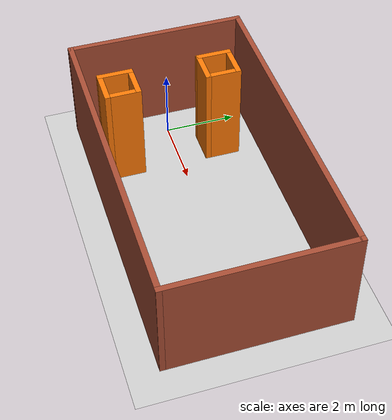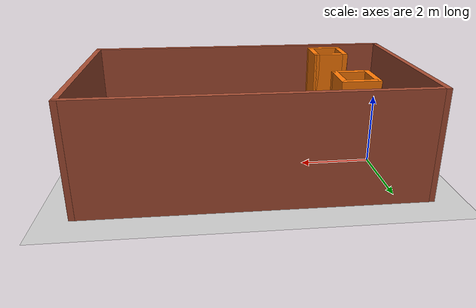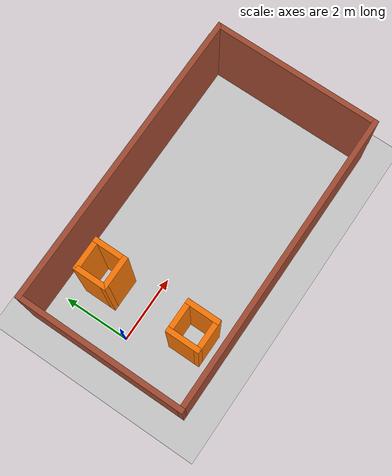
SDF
<sdf version="1.6">
 <world name="default">
  <model name="ground_plane">
   <static>1</static>
   <link name="link">
    <collision name="collision">
     <geometry><plane><normal>0 0 1</normal><size>100 100</size></plane></geometry>
     <surface><friction><ode><mu>100</mu><mu2>50</mu2></ode></friction></surface>
    </collision>
    <visual name="visual">
     <cast_shadows>0</cast_shadows>
     <geometry><plane><normal>0 0 1</normal><size>100 100</size></plane></geometry>
     <material>
      <script><uri>file://media/materials/scripts/gazebo.material</uri><name>Gazebo/Grey</name></script>
     </material>
    </visual>
   </link>
  </model>
  <model name="fangjian">
   <pose>3.59658 -0.047022 0 0 -0 0</pose>
   <link name="Wall_11">
    <collision name="Wall_11_Collision">
     <geometry><box><size>9 0.15 3</size></box></geometry>
     <pose>0 0 1.5 0 -0 0</pose>
    </collision>
    <visual name="Wall_11_Visual">
     <pose>0 0 1.5 0 -0 0</pose>
     <geometry><box><size>9 0.15 3</size></box></geometry>
     <material>
      <script><uri>file://media/materials/scripts/gazebo.material</uri><name>Gazebo/Bricks</name></script>
      <ambient>1 1 1 1</ambient>
     </material>
     <meta><layer>0</layer></meta>
    </visual>
    <pose>-0 2.434 0 0 -0 0</pose>
   </link>
   <link name="Wall_12">
    <collision name="Wall_12_Collision">
     <geometry><box><size>5.017 0.15 3</size></box></geometry>
     <pose>0 0 1.5 0 -0 0</pose>
    </collision>
    <visual name="Wall_12_Visual">
     <pose>0 0 1.5 0 -0 0</pose>
     <geometry><box><size>5.017 0.15 3</size></box></geometry>
     <material>
      <script><uri>file://media/materials/scripts/gazebo.material</uri><name>Gazebo/Bricks</name></script>
      <ambient>1 1 1 1</ambient>
     </material>
     <meta><layer>0</layer></meta>
    </visual>
    <pose>4.425 0.000504 0 0 -0 -1.5708</pose>
   </link>
   <link name="Wall_13">
    <collision name="Wall_13_Collision">
     <geometry><box><size>9 0.15 3</size></box></geometry>
     <pose>0 0 1.5 0 -0 0</pose>
    </collision>
    <visual name="Wall_13_Visual">
     <pose>0 0 1.5 0 -0 0</pose>
     <geometry><box><size>9 0.15 3</size></box></geometry>
     <material>
      <script><uri>file://media/materials/scripts/gazebo.material</uri><name>Gazebo/Bricks</name></script>
      <ambient>1 1 1 1</ambient>
     </material>
     <meta><layer>0</layer></meta>
    </visual>
    <pose>-0 -2.4335 0 0 -0 -3.14148</pose>
   </link>
   <link name="Wall_14">
    <collision name="Wall_14_Collision">
     <geometry><box><size>5.018 0.15 3</size></box></geometry>
     <pose>0 0 1.5 0 -0 0</pose>
    </collision>
    <visual name="Wall_14_Visual">
     <pose>0 0 1.5 0 -0 0</pose>
     <geometry><box><size>5.018 0.15 3</size></box></geometry>
     <material>
      <script><uri>file://media/materials/scripts/gazebo.material</uri><name>Gazebo/Bricks</name></script>
      <ambient>1 1 1 1</ambient>
     </material>
     <meta><layer>0</layer></meta>
    </visual>
    <pose>-4.425 4e-06 0 0 -0 1.5708</pose>
   </link>
   <static>1</static>
  </model>
  <model name="zhuzi">
   <pose>1.00373 -1.58252 0 0 -0 0</pose>
   <link name="Wall_0">
    <collision name="Wall_0_Collision">
     <geometry><box><size>1 0.15 3</size></box></geometry>
     <pose>0 0 1.5 0 -0 0</pose>
    </collision>
    <visual name="Wall_0_Visual">
     <pose>0 0 1.5 0 -0 0</pose>
     <geometry><box><size>1 0.15 3</size></box></geometry>
     <material>
      <script><uri>file://media/materials/scripts/gazebo.material</uri><name>Gazebo/Grey</name></script>
      <ambient>0.996078 0.47451 0.0196078 1</ambient>
     </material>
     <meta><layer>0</layer></meta>
    </visual>
    <pose>0 0.425 0 0 -0 0</pose>
   </link>
   <link name="Wall_1">
    <collision name="Wall_1_Collision">
     <geometry><box><size>1 0.15 3</size></box></geometry>
     <pose>0 0 1.5 0 -0 0</pose>
    </collision>
    <visual name="Wall_1_Visual">
     <pose>0 0 1.5 0 -0 0</pose>
     <geometry><box><size>1 0.15 3</size></box></geometry>
     <material>
      <script><uri>file://media/materials/scripts/gazebo.material</uri><name>Gazebo/Grey</name></script>
      <ambient>0.996078 0.47451 0.0196078 1</ambient>
     </material>
     <meta><layer>0</layer></meta>
    </visual>
    <pose>0.425 -0 0 0 -0 -1.5708</pose>
   </link>
   <link name="Wall_2">
    <collision name="Wall_2_Collision">
     <geometry><box><size>1 0.15 3</size></box></geometry>
     <pose>0 0 1.5 0 -0 0</pose>
    </collision>
    <visual name="Wall_2_Visual">
     <pose>0 0 1.5 0 -0 0</pose>
     <geometry><box><size>1 0.15 3</size></box></geometry>
     <material>
      <script><uri>file://media/materials/scripts/gazebo.material</uri><name>Gazebo/Grey</name></script>
      <ambient>0.996078 0.47451 0.0196078 1</ambient>
     </material>
     <meta><layer>0</layer></meta>
    </visual>
    <pose>0 -0.425 0 0 -0 3.14159</pose>
   </link>
   <link name="Wall_3">
    <collision name="Wall_3_Collision">
     <geometry><box><size>1 0.15 3</size></box></geometry>
     <pose>0 0 1.5 0 -0 0</pose>
    </collision>
    <visual name="Wall_3_Visual">
     <pose>0 0 1.5 0 -0 0</pose>
     <geometry><box><size>1 0.15 3</size></box></geometry>
     <material>
      <script><uri>file://media/materials/scripts/gazebo.material</uri><name>Gazebo/Grey</name></script>
      <ambient>0.996078 0.47451 0.0196078 1</ambient>
     </material>
     <meta><layer>0</layer></meta>
    </visual>
    <pose>-0.425 -0 0 0 -0 1.5708</pose>
   </link>
   <link name="Wall_4">
    <collision name="Wall_4_Collision">
     <geometry><box><size>0.15 0.15 2.5</size></box></geometry>
     <pose>0 0 1.25 0 -0 0</pose>
    </collision>
    <visual name="Wall_4_Visual">
     <pose>0 0 1.25 0 -0 0</pose>
     <geometry><box><size>0.15 0.15 2.5</size></box></geometry>
     <material>
      <script><uri>file://media/materials/scripts/gazebo.material</uri><name>Gazebo/Grey</name></script>
      <ambient>1 1 1 1</ambient>
     </material>
     <meta><layer>0</layer></meta>
    </visual>
    <pose>-0.425 0.425 0 0 -0 0</pose>
   </link>
   <static>1</static>
  </model>
  <model name="zhuzi_0">
   <pose>0.986806 1.21192 0 0 -0 0</pose>
   <link name="Wall_0">
    <collision name="Wall_0_Collision">
     <geometry><box><size>1 0.15 3</size></box></geometry>
     <pose>0 0 1.5 0 -0 0</pose>
    </collision>
    <visual name="Wall_0_Visual">
     <pose>0 0 1.5 0 -0 0</pose>
     <geometry><box><size>1 0.15 3</size></box></geometry>
     <material>
      <script><uri>file://media/materials/scripts/gazebo.material</uri><name>Gazebo/Grey</name></script>
      <ambient>0.996078 0.47451 0.0196078 1</ambient>
     </material>
     <meta><layer>0</layer></meta>
    </visual>
    <pose>0 0.425 0 0 -0 0</pose>
   </link>
   <link name="Wall_1">
    <collision name="Wall_1_Collision">
     <geometry><box><size>1 0.15 3</size></box></geometry>
     <pose>0 0 1.5 0 -0 0</pose>
    </collision>
    <visual name="Wall_1_Visual">
     <pose>0 0 1.5 0 -0 0</pose>
     <geometry><box><size>1 0.15 3</size></box></geometry>
     <material>
      <script><uri>file://media/materials/scripts/gazebo.material</uri><name>Gazebo/Grey</name></script>
      <ambient>0.996078 0.47451 0.0196078 1</ambient>
     </material>
     <meta><layer>0</layer></meta>
    </visual>
    <pose>0.425 -0 0 0 -0 -1.5708</pose>
   </link>
   <link name="Wall_2">
    <collision name="Wall_2_Collision">
     <geometry><box><size>1 0.15 3</size></box></geometry>
     <pose>0 0 1.5 0 -0 0</pose>
    </collision>
    <visual name="Wall_2_Visual">
     <pose>0 0 1.5 0 -0 0</pose>
     <geometry><box><size>1 0.15 3</size></box></geometry>
     <material>
      <script><uri>file://media/materials/scripts/gazebo.material</uri><name>Gazebo/Grey</name></script>
      <ambient>0.996078 0.47451 0.0196078 1</ambient>
     </material>
     <meta><layer>0</layer></meta>
    </visual>
    <pose>0 -0.425 0 0 -0 3.14159</pose>
   </link>
   <link name="Wall_3">
    <collision name="Wall_3_Collision">
     <geometry><box><size>1 0.15 3</size></box></geometry>
     <pose>0 0 1.5 0 -0 0</pose>
    </collision>
    <visual name="Wall_3_Visual">
     <pose>0 0 1.5 0 -0 0</pose>
     <geometry><box><size>1 0.15 3</size></box></geometry>
     <material>
      <script><uri>file://media/materials/scripts/gazebo.material</uri><name>Gazebo/Grey</name></script>
      <ambient>0.996078 0.47451 0.0196078 1</ambient>
     </material>
     <meta><layer>0</layer></meta>
    </visual>
    <pose>-0.425 -0 0 0 -0 1.5708</pose>
   </link>
   <link name="Wall_4">
    <collision name="Wall_4_Collision">
     <geometry><box><size>0.15 0.15 2.5</size></box></geometry>
     <pose>0 0 1.25 0 -0 0</pose>
    </collision>
    <visual name="Wall_4_Visual">
     <pose>0 0 1.25 0 -0 0</pose>
     <geometry><box><size>0.15 0.15 2.5</size></box></geometry>
     <material>
      <script><uri>file://media/materials/scripts/gazebo.material</uri><name>Gazebo/Grey</name></script>
      <ambient>1 1 1 1</ambient>
     </material>
     <meta><layer>0</layer></meta>
    </visual>
    <pose>-0.425 0.425 0 0 -0 0</pose>
   </link>
   <static>1</static>
  </model>
 </world>
</sdf>
